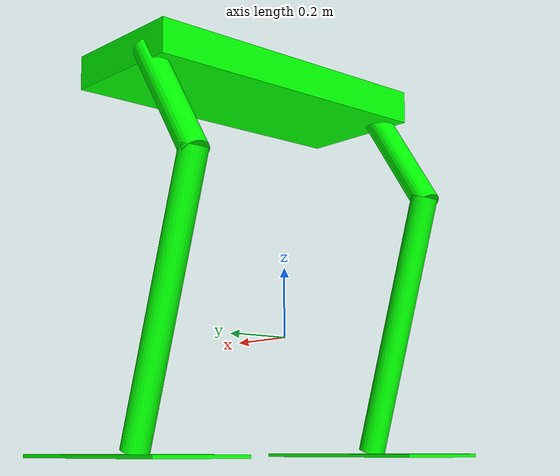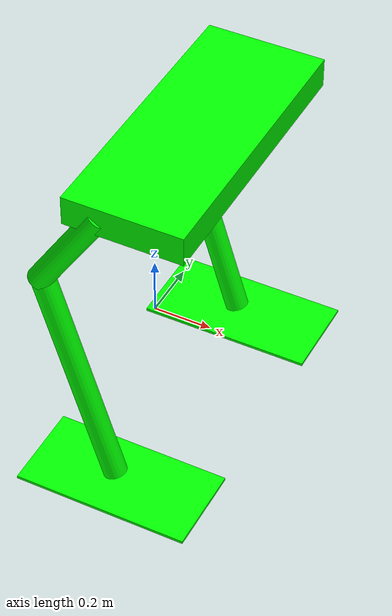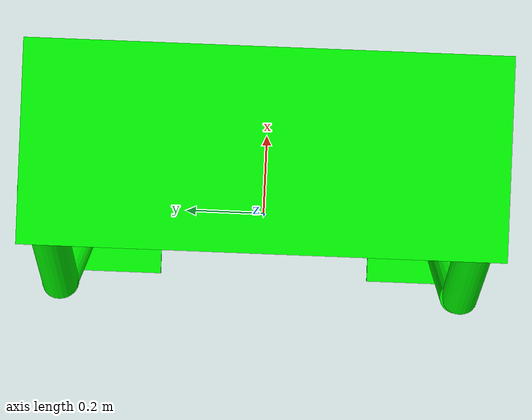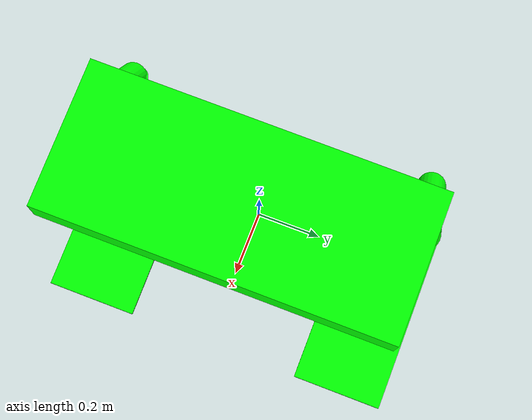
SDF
<?xml version='1.0'?>
<sdf version='1.6'>
  <model name='robot_green1'>
    <link name='link_1'>
      <inertial>
        <mass>1</mass>
        <inertia>
          <ixx>0.166667</ixx>
          <ixy>0</ixy>
          <ixz>0</ixz>
          <iyy>0.166667</iyy>
          <iyz>0</iyz>
          <izz>0.166667</izz>
        </inertia>
        <pose frame=''>0 0 0 0 -0 0</pose>
      </inertial>
      <pose frame=''>0.108816 -0.448387 -0.328119 0 -0 0</pose>
      <gravity>1</gravity>
      <self_collide>0</self_collide>
      <kinematic>0</kinematic>
      <enable_wind>0</enable_wind>
      <visual name='visual'>
        <pose frame=''>0 0 0 0 -0 0</pose>
        <geometry>
          <box>
            <size>0.6 0.3 0.01</size>
          </box>
        </geometry>
        <material>
          <lighting>1</lighting>
          <script>
            <uri>file://media/materials/scripts/gazebo.material</uri>
            <name>Gazebo/Grey</name>
          </script>
          <shader type='vertex'>
            <normal_map>__default__</normal_map>
          </shader>
          <ambient>0 1 0 1</ambient>
          <diffuse>0.7 0.7 0.7 1</diffuse>
          <specular>0.01 0.01 0.01 1</specular>
          <emissive>0 0 0 1</emissive>
        </material>
        <transparency>0</transparency>
        <cast_shadows>1</cast_shadows>
      </visual>
      <collision name='collision'>
        <laser_retro>0</laser_retro>
        <max_contacts>10</max_contacts>
        <pose frame=''>0 0 0 0 -0 0</pose>
        <geometry>
          <box>
            <size>0.6 0.3 0.01</size>
          </box>
        </geometry>
        <surface>
          <friction>
            <ode>
              <mu>1</mu>
              <mu2>1</mu2>
              <fdir1>0 0 0</fdir1>
              <slip1>0</slip1>
              <slip2>0</slip2>
            </ode>
            <torsional>
              <coefficient>1</coefficient>
              <patch_radius>0</patch_radius>
              <surface_radius>0</surface_radius>
              <use_patch_radius>1</use_patch_radius>
              <ode>
                <slip>0</slip>
              </ode>
            </torsional>
          </friction>
          <bounce>
            <restitution_coefficient>0</restitution_coefficient>
            <threshold>1e+06</threshold>
          </bounce>
          <contact>
            <collide_without_contact>0</collide_without_contact>
            <collide_without_contact_bitmask>1</collide_without_contact_bitmask>
            <collide_bitmask>1</collide_bitmask>
            <ode>
              <soft_cfm>0</soft_cfm>
              <soft_erp>0.2</soft_erp>
              <kp>1e+13</kp>
              <kd>1</kd>
              <max_vel>0.01</max_vel>
              <min_depth>0</min_depth>
            </ode>
            <bullet>
              <split_impulse>1</split_impulse>
              <split_impulse_penetration_threshold>-0.01</split_impulse_penetration_threshold>
              <soft_cfm>0</soft_cfm>
              <soft_erp>0.2</soft_erp>
              <kp>1e+13</kp>
              <kd>1</kd>
            </bullet>
          </contact>
        </surface>
      </collision>
    </link>
    <link name='link_1_clone'>
      <inertial>
        <mass>1</mass>
        <inertia>
          <ixx>0.166667</ixx>
          <ixy>0</ixy>
          <ixz>0</ixz>
          <iyy>0.166667</iyy>
          <iyz>0</iyz>
          <izz>0.166667</izz>
        </inertia>
        <pose frame=''>0 0 0 0 -0 0</pose>
      </inertial>
      <pose frame=''>0.108816 0.43723 -0.328119 0 -0 0</pose>
      <gravity>1</gravity>
      <self_collide>0</self_collide>
      <kinematic>0</kinematic>
      <enable_wind>0</enable_wind>
      <visual name='visual'>
        <pose frame=''>0 0 0 0 -0 0</pose>
        <geometry>
          <box>
            <size>0.6 0.3 0.01</size>
          </box>
        </geometry>
        <material>
          <lighting>1</lighting>
          <script>
            <uri>file://media/materials/scripts/gazebo.material</uri>
            <name>Gazebo/Grey</name>
          </script>
          <shader type='vertex'>
            <normal_map>__default__</normal_map>
          </shader>
          <ambient>0 1 0 1</ambient>
          <diffuse>0.7 0.7 0.7 1</diffuse>
          <specular>0.01 0.01 0.01 1</specular>
          <emissive>0 0 0 1</emissive>
        </material>
        <transparency>0</transparency>
        <cast_shadows>1</cast_shadows>
      </visual>
      <collision name='collision'>
        <laser_retro>0</laser_retro>
        <max_contacts>10</max_contacts>
        <pose frame=''>0 0 0 0 -0 0</pose>
        <geometry>
          <box>
            <size>0.6 0.3 0.01</size>
          </box>
        </geometry>
        <surface>
          <friction>
            <ode>
              <mu>1</mu>
              <mu2>1</mu2>
              <fdir1>0 0 0</fdir1>
              <slip1>0</slip1>
              <slip2>0</slip2>
            </ode>
            <torsional>
              <coefficient>1</coefficient>
              <patch_radius>0</patch_radius>
              <surface_radius>0</surface_radius>
              <use_patch_radius>1</use_patch_radius>
              <ode>
                <slip>0</slip>
              </ode>
            </torsional>
          </friction>
          <bounce>
            <restitution_coefficient>0</restitution_coefficient>
            <threshold>1e+06</threshold>
          </bounce>
          <contact>
            <collide_without_contact>0</collide_without_contact>
            <collide_without_contact_bitmask>1</collide_without_contact_bitmask>
            <collide_bitmask>1</collide_bitmask>
            <ode>
              <soft_cfm>0</soft_cfm>
              <soft_erp>0.2</soft_erp>
              <kp>1e+13</kp>
              <kd>1</kd>
              <max_vel>0.01</max_vel>
              <min_depth>0</min_depth>
            </ode>
            <bullet>
              <split_impulse>1</split_impulse>
              <split_impulse_penetration_threshold>-0.01</split_impulse_penetration_threshold>
              <soft_cfm>0</soft_cfm>
              <soft_erp>0.2</soft_erp>
              <kp>1e+13</kp>
              <kd>1</kd>
            </bullet>
          </contact>
        </surface>
      </collision>
    </link>
    <link name='link_2'>
      <inertial>
        <mass>1</mass>
        <inertia>
          <ixx>0.145833</ixx>
          <ixy>0</ixy>
          <ixz>0</ixz>
          <iyy>0.145833</iyy>
          <iyz>0</iyz>
          <izz>0.125</izz>
        </inertia>
        <pose frame=''>0 0 0 0 -0 0</pose>
      </inertial>
      <pose frame=''>0.083446 -0.438387 -0.316611 0 -0.3 0</pose>
      <gravity>1</gravity>
      <self_collide>0</self_collide>
      <kinematic>0</kinematic>
      <enable_wind>0</enable_wind>
      <visual name='visual'>
        <pose frame=''>0 0 0.4 0 -0 0</pose>
        <geometry>
          <cylinder>
            <radius>0.04</radius>
            <length>0.8</length>
          </cylinder>
        </geometry>
        <material>
          <lighting>1</lighting>
          <script>
            <uri>file://media/materials/scripts/gazebo.material</uri>
            <name>Gazebo/Grey</name>
          </script>
          <shader type='vertex'>
            <normal_map>__default__</normal_map>
          </shader>
          <ambient>0 1 0 1</ambient>
          <diffuse>0.7 0.7 0.7 1</diffuse>
          <specular>0.01 0.01 0.01 1</specular>
          <emissive>0 0 0 1</emissive>
        </material>
        <transparency>0</transparency>
        <cast_shadows>1</cast_shadows>
      </visual>
      <collision name='collision'>
        <laser_retro>0</laser_retro>
        <max_contacts>10</max_contacts>
        <pose frame=''>0 0 0.4 0 -0 0</pose>
        <geometry>
          <cylinder>
            <radius>0.04</radius>
            <length>0.8</length>
          </cylinder>
        </geometry>
        <surface>
          <friction>
            <ode>
              <mu>1</mu>
              <mu2>1</mu2>
              <fdir1>0 0 0</fdir1>
              <slip1>0</slip1>
              <slip2>0</slip2>
            </ode>
            <torsional>
              <coefficient>1</coefficient>
              <patch_radius>0</patch_radius>
              <surface_radius>0</surface_radius>
              <use_patch_radius>1</use_patch_radius>
              <ode>
                <slip>0</slip>
              </ode>
            </torsional>
          </friction>
          <bounce>
            <restitution_coefficient>0</restitution_coefficient>
            <threshold>1e+06</threshold>
          </bounce>
          <contact>
            <collide_without_contact>0</collide_without_contact>
            <collide_without_contact_bitmask>1</collide_without_contact_bitmask>
            <collide_bitmask>1</collide_bitmask>
            <ode>
              <soft_cfm>0</soft_cfm>
              <soft_erp>0.2</soft_erp>
              <kp>1e+13</kp>
              <kd>1</kd>
              <max_vel>0.01</max_vel>
              <min_depth>0</min_depth>
            </ode>
            <bullet>
              <split_impulse>1</split_impulse>
              <split_impulse_penetration_threshold>-0.01</split_impulse_penetration_threshold>
              <soft_cfm>0</soft_cfm>
              <soft_erp>0.2</soft_erp>
              <kp>1e+13</kp>
              <kd>1</kd>
            </bullet>
          </contact>
        </surface>
      </collision>
    </link>
    <link name='link_2_clone'>
      <inertial>
        <mass>1</mass>
        <inertia>
          <ixx>0.145833</ixx>
          <ixy>0</ixy>
          <ixz>0</ixz>
          <iyy>0.145833</iyy>
          <iyz>0</iyz>
          <izz>0.125</izz>
        </inertia>
        <pose frame=''>0 0 0 0 -0 0</pose>
      </inertial>
      <pose frame=''>-0.26733 -0.444034 0.261881 0 0.58 0</pose>
      <gravity>1</gravity>
      <self_collide>0</self_collide>
      <kinematic>0</kinematic>
      <enable_wind>0</enable_wind>
      <visual name='visual'>
        <pose frame=''>0 0 0.4 0 -0 0</pose>
        <geometry>
          <cylinder>
            <radius>0.04</radius>
            <length>0.4</length>
          </cylinder>
        </geometry>
        <material>
          <lighting>1</lighting>
          <script>
            <uri>file://media/materials/scripts/gazebo.material</uri>
            <name>Gazebo/Grey</name>
          </script>
          <shader type='vertex'>
            <normal_map>__default__</normal_map>
          </shader>
          <ambient>0 1 0 1</ambient>
          <diffuse>0.7 0.7 0.7 1</diffuse>
          <specular>0.01 0.01 0.01 1</specular>
          <emissive>0 0 0 1</emissive>
        </material>
        <transparency>0</transparency>
        <cast_shadows>1</cast_shadows>
      </visual>
      <collision name='collision'>
        <laser_retro>0</laser_retro>
        <max_contacts>10</max_contacts>
        <pose frame=''>0 0 0.4 0 -0 0</pose>
        <geometry>
          <cylinder>
            <radius>0.04</radius>
            <length>0.4</length>
          </cylinder>
        </geometry>
        <surface>
          <friction>
            <ode>
              <mu>1</mu>
              <mu2>1</mu2>
              <fdir1>0 0 0</fdir1>
              <slip1>0</slip1>
              <slip2>0</slip2>
            </ode>
            <torsional>
              <coefficient>1</coefficient>
              <patch_radius>0</patch_radius>
              <surface_radius>0</surface_radius>
              <use_patch_radius>1</use_patch_radius>
              <ode>
                <slip>0</slip>
              </ode>
            </torsional>
          </friction>
          <bounce>
            <restitution_coefficient>0</restitution_coefficient>
            <threshold>1e+06</threshold>
          </bounce>
          <contact>
            <collide_without_contact>0</collide_without_contact>
            <collide_without_contact_bitmask>1</collide_without_contact_bitmask>
            <collide_bitmask>1</collide_bitmask>
            <ode>
              <soft_cfm>0</soft_cfm>
              <soft_erp>0.2</soft_erp>
              <kp>1e+13</kp>
              <kd>1</kd>
              <max_vel>0.01</max_vel>
              <min_depth>0</min_depth>
            </ode>
            <bullet>
              <split_impulse>1</split_impulse>
              <split_impulse_penetration_threshold>-0.01</split_impulse_penetration_threshold>
              <soft_cfm>0</soft_cfm>
              <soft_erp>0.2</soft_erp>
              <kp>1e+13</kp>
              <kd>1</kd>
            </bullet>
          </contact>
        </surface>
      </collision>
    </link>
    <link name='link_2_clone_0'>
      <inertial>
        <mass>1</mass>
        <inertia>
          <ixx>0.145833</ixx>
          <ixy>0</ixy>
          <ixz>0</ixz>
          <iyy>0.145833</iyy>
          <iyz>0</iyz>
          <izz>0.125</izz>
        </inertia>
        <pose frame=''>0 0 0 0 -0 0</pose>
      </inertial>
      <pose frame=''>0.083446 0.446613 -0.316611 0 -0.3 0</pose>
      <gravity>1</gravity>
      <self_collide>0</self_collide>
      <kinematic>0</kinematic>
      <enable_wind>0</enable_wind>
      <visual name='visual'>
        <pose frame=''>0 0 0.4 0 -0 0</pose>
        <geometry>
          <cylinder>
            <radius>0.04</radius>
            <length>0.8</length>
          </cylinder>
        </geometry>
        <material>
          <lighting>1</lighting>
          <script>
            <uri>file://media/materials/scripts/gazebo.material</uri>
            <name>Gazebo/Grey</name>
          </script>
          <shader type='vertex'>
            <normal_map>__default__</normal_map>
          </shader>
          <ambient>0 1 0 1</ambient>
          <diffuse>0.7 0.7 0.7 1</diffuse>
          <specular>0.01 0.01 0.01 1</specular>
          <emissive>0 0 0 1</emissive>
        </material>
        <transparency>0</transparency>
        <cast_shadows>1</cast_shadows>
      </visual>
      <collision name='collision'>
        <laser_retro>0</laser_retro>
        <max_contacts>10</max_contacts>
        <pose frame=''>0 0 0.4 0 -0 0</pose>
        <geometry>
          <cylinder>
            <radius>0.04</radius>
            <length>0.8</length>
          </cylinder>
        </geometry>
        <surface>
          <friction>
            <ode>
              <mu>1</mu>
              <mu2>1</mu2>
              <fdir1>0 0 0</fdir1>
              <slip1>0</slip1>
              <slip2>0</slip2>
            </ode>
            <torsional>
              <coefficient>1</coefficient>
              <patch_radius>0</patch_radius>
              <surface_radius>0</surface_radius>
              <use_patch_radius>1</use_patch_radius>
              <ode>
                <slip>0</slip>
              </ode>
            </torsional>
          </friction>
          <bounce>
            <restitution_coefficient>0</restitution_coefficient>
            <threshold>1e+06</threshold>
          </bounce>
          <contact>
            <collide_without_contact>0</collide_without_contact>
            <collide_without_contact_bitmask>1</collide_without_contact_bitmask>
            <collide_bitmask>1</collide_bitmask>
            <ode>
              <soft_cfm>0</soft_cfm>
              <soft_erp>0.2</soft_erp>
              <kp>1e+13</kp>
              <kd>1</kd>
              <max_vel>0.01</max_vel>
              <min_depth>0</min_depth>
            </ode>
            <bullet>
              <split_impulse>1</split_impulse>
              <split_impulse_penetration_threshold>-0.01</split_impulse_penetration_threshold>
              <soft_cfm>0</soft_cfm>
              <soft_erp>0.2</soft_erp>
              <kp>1e+13</kp>
              <kd>1</kd>
            </bullet>
          </contact>
        </surface>
      </collision>
    </link>
    <link name='link_2_clone_clone'>
      <inertial>
        <mass>1</mass>
        <inertia>
          <ixx>0.145833</ixx>
          <ixy>0</ixy>
          <ixz>0</ixz>
          <iyy>0.145833</iyy>
          <iyz>0</iyz>
          <izz>0.125</izz>
        </inertia>
        <pose frame=''>0 0 0 0 -0 0</pose>
      </inertial>
      <pose frame=''>-0.26733 0.446613 0.261881 0 0.58 0</pose>
      <gravity>1</gravity>
      <self_collide>0</self_collide>
      <kinematic>0</kinematic>
      <enable_wind>0</enable_wind>
      <visual name='visual'>
        <pose frame=''>0 0 0.4 0 -0 0</pose>
        <geometry>
          <cylinder>
            <radius>0.04</radius>
            <length>0.4</length>
          </cylinder>
        </geometry>
        <material>
          <lighting>1</lighting>
          <script>
            <uri>file://media/materials/scripts/gazebo.material</uri>
            <name>Gazebo/Grey</name>
          </script>
          <shader type='vertex'>
            <normal_map>__default__</normal_map>
          </shader>
          <ambient>0 1 0 1</ambient>
          <diffuse>0.7 0.7 0.7 1</diffuse>
          <specular>0.01 0.01 0.01 1</specular>
          <emissive>0 0 0 1</emissive>
        </material>
        <transparency>0</transparency>
        <cast_shadows>1</cast_shadows>
      </visual>
      <collision name='collision'>
        <laser_retro>0</laser_retro>
        <max_contacts>10</max_contacts>
        <pose frame=''>0 0 0.4 0 -0 0</pose>
        <geometry>
          <cylinder>
            <radius>0.04</radius>
            <length>0.4</length>
          </cylinder>
        </geometry>
        <surface>
          <friction>
            <ode>
              <mu>1</mu>
              <mu2>1</mu2>
              <fdir1>0 0 0</fdir1>
              <slip1>0</slip1>
              <slip2>0</slip2>
            </ode>
            <torsional>
              <coefficient>1</coefficient>
              <patch_radius>0</patch_radius>
              <surface_radius>0</surface_radius>
              <use_patch_radius>1</use_patch_radius>
              <ode>
                <slip>0</slip>
              </ode>
            </torsional>
          </friction>
          <bounce>
            <restitution_coefficient>0</restitution_coefficient>
            <threshold>1e+06</threshold>
          </bounce>
          <contact>
            <collide_without_contact>0</collide_without_contact>
            <collide_without_contact_bitmask>1</collide_without_contact_bitmask>
            <collide_bitmask>1</collide_bitmask>
            <ode>
              <soft_cfm>0</soft_cfm>
              <soft_erp>0.2</soft_erp>
              <kp>1e+13</kp>
              <kd>1</kd>
              <max_vel>0.01</max_vel>
              <min_depth>0</min_depth>
            </ode>
            <bullet>
              <split_impulse>1</split_impulse>
              <split_impulse_penetration_threshold>-0.01</split_impulse_penetration_threshold>
              <soft_cfm>0</soft_cfm>
              <soft_erp>0.2</soft_erp>
              <kp>1e+13</kp>
              <kd>1</kd>
            </bullet>
          </contact>
        </surface>
      </collision>
    </link>
    <link name='link_3'>
      <inertial>
        <mass>1</mass>
        <inertia>
          <ixx>0.166667</ixx>
          <ixy>0</ixy>
          <ixz>0</ixz>
          <iyy>0.166667</iyy>
          <iyz>0</iyz>
          <izz>0.166667</izz>
        </inertia>
        <pose frame=''>0 0 0 0 -0 0</pose>
      </inertial>
      <pose frame=''>0.150138 0.000351 0.765701 0 -0 0</pose>
      <gravity>1</gravity>
      <self_collide>0</self_collide>
      <kinematic>0</kinematic>
      <enable_wind>0</enable_wind>
      <visual name='visual'>
        <pose frame=''>0 0 0 0 -0 0</pose>
        <geometry>
          <box>
            <size>0.4 0.95 0.1</size>
          </box>
        </geometry>
        <material>
          <lighting>1</lighting>
          <script>
            <uri>file://media/materials/scripts/gazebo.material</uri>
            <name>Gazebo/Grey</name>
          </script>
          <shader type='vertex'>
            <normal_map>__default__</normal_map>
          </shader>
          <ambient>0 1 0 1</ambient>
          <diffuse>0.7 0.7 0.7 1</diffuse>
          <specular>0.01 0.01 0.01 1</specular>
          <emissive>0 0 0 1</emissive>
        </material>
        <transparency>0</transparency>
        <cast_shadows>1</cast_shadows>
      </visual>
      <collision name='collision'>
        <laser_retro>0</laser_retro>
        <max_contacts>10</max_contacts>
        <pose frame=''>0 0 0 0 -0 0</pose>
        <geometry>
          <box>
            <size>0.4 0.95 0.1</size>
          </box>
        </geometry>
        <surface>
          <friction>
            <ode>
              <mu>1</mu>
              <mu2>1</mu2>
              <fdir1>0 0 0</fdir1>
              <slip1>0</slip1>
              <slip2>0</slip2>
            </ode>
            <torsional>
              <coefficient>1</coefficient>
              <patch_radius>0</patch_radius>
              <surface_radius>0</surface_radius>
              <use_patch_radius>1</use_patch_radius>
              <ode>
                <slip>0</slip>
              </ode>
            </torsional>
          </friction>
          <bounce>
            <restitution_coefficient>0</restitution_coefficient>
            <threshold>1e+06</threshold>
          </bounce>
          <contact>
            <collide_without_contact>0</collide_without_contact>
            <collide_without_contact_bitmask>1</collide_without_contact_bitmask>
            <collide_bitmask>1</collide_bitmask>
            <ode>
              <soft_cfm>0</soft_cfm>
              <soft_erp>0.2</soft_erp>
              <kp>1e+13</kp>
              <kd>1</kd>
              <max_vel>0.01</max_vel>
              <min_depth>0</min_depth>
            </ode>
            <bullet>
              <split_impulse>1</split_impulse>
              <split_impulse_penetration_threshold>-0.01</split_impulse_penetration_threshold>
              <soft_cfm>0</soft_cfm>
              <soft_erp>0.2</soft_erp>
              <kp>1e+13</kp>
              <kd>1</kd>
            </bullet>
          </contact>
        </surface>
      </collision>
    </link>
    <joint name='link_1_JOINT_0' type='revolute'>
      <parent>link_1</parent>
      <child>link_2</child>
      <pose frame=''>0 0 0 0 -0 0</pose>
      <axis>
        <xyz>0 0 1</xyz>
        <use_parent_model_frame>0</use_parent_model_frame>
        <limit>
          <lower>-1.79769e+308</lower>
          <upper>1.79769e+308</upper>
          <effort>-1</effort>
          <velocity>-1</velocity>
        </limit>
        <dynamics>
          <spring_reference>0</spring_reference>
          <spring_stiffness>0</spring_stiffness>
          <damping>0</damping>
        </dynamics>
      </axis>
      <physics>
        <ode>
          <limit>
            <cfm>0</cfm>
            <erp>0.2</erp>
          </limit>
          <suspension>
            <cfm>0</cfm>
            <erp>0.2</erp>
          </suspension>
        </ode>
      </physics>
    </joint>
    <joint name='link_1_clone_JOINT_2' type='revolute'>
      <parent>link_1_clone</parent>
      <child>link_2_clone_0</child>
      <pose frame=''>0 0 0 0 -0 0</pose>
      <axis>
        <xyz>0 0 1</xyz>
        <use_parent_model_frame>0</use_parent_model_frame>
        <limit>
          <lower>-1.79769e+308</lower>
          <upper>1.79769e+308</upper>
          <effort>-1</effort>
          <velocity>-1</velocity>
        </limit>
        <dynamics>
          <spring_reference>0</spring_reference>
          <spring_stiffness>0</spring_stiffness>
          <damping>0</damping>
        </dynamics>
      </axis>
      <physics>
        <ode>
          <limit>
            <cfm>0</cfm>
            <erp>0.2</erp>
          </limit>
          <suspension>
            <cfm>0</cfm>
            <erp>0.2</erp>
          </suspension>
        </ode>
      </physics>
    </joint>
    <joint name='link_2_JOINT_1' type='revolute'>
      <parent>link_2</parent>
      <child>link_2_clone</child>
      <pose frame=''>0 0 0 0 -0 0</pose>
      <axis>
        <xyz>0 0 1</xyz>
        <use_parent_model_frame>0</use_parent_model_frame>
        <limit>
          <lower>-1.79769e+308</lower>
          <upper>1.79769e+308</upper>
          <effort>-1</effort>
          <velocity>-1</velocity>
        </limit>
        <dynamics>
          <spring_reference>0</spring_reference>
          <spring_stiffness>0</spring_stiffness>
          <damping>0</damping>
        </dynamics>
      </axis>
      <physics>
        <ode>
          <limit>
            <cfm>0</cfm>
            <erp>0.2</erp>
          </limit>
          <suspension>
            <cfm>0</cfm>
            <erp>0.2</erp>
          </suspension>
        </ode>
      </physics>
    </joint>
    <joint name='link_2_clone_0_JOINT_3' type='revolute'>
      <parent>link_2_clone_0</parent>
      <child>link_2_clone_clone</child>
      <pose frame=''>0 0 0 0 -0 0</pose>
      <axis>
        <xyz>0 0 1</xyz>
        <use_parent_model_frame>0</use_parent_model_frame>
        <limit>
          <lower>-1.79769e+308</lower>
          <upper>1.79769e+308</upper>
          <effort>-1</effort>
          <velocity>-1</velocity>
        </limit>
        <dynamics>
          <spring_reference>0</spring_reference>
          <spring_stiffness>0</spring_stiffness>
          <damping>0</damping>
        </dynamics>
      </axis>
      <physics>
        <ode>
          <limit>
            <cfm>0</cfm>
            <erp>0.2</erp>
          </limit>
          <suspension>
            <cfm>0</cfm>
            <erp>0.2</erp>
          </suspension>
        </ode>
      </physics>
    </joint>
    <joint name='link_3_JOINT_4' type='revolute'>
      <parent>link_3</parent>
      <child>link_2_clone</child>
      <pose frame=''>0 0 0 0 -0 0</pose>
      <axis>
        <xyz>0 0 1</xyz>
        <use_parent_model_frame>0</use_parent_model_frame>
        <limit>
          <lower>-1.79769e+308</lower>
          <upper>1.79769e+308</upper>
          <effort>-1</effort>
          <velocity>-1</velocity>
        </limit>
        <dynamics>
          <spring_reference>0</spring_reference>
          <spring_stiffness>0</spring_stiffness>
          <damping>0</damping>
        </dynamics>
      </axis>
      <physics>
        <ode>
          <limit>
            <cfm>0</cfm>
            <erp>0.2</erp>
          </limit>
          <suspension>
            <cfm>0</cfm>
            <erp>0.2</erp>
          </suspension>
        </ode>
      </physics>
    </joint>
    <joint name='link_3_JOINT_7' type='revolute'>
      <parent>link_3</parent>
      <child>link_2_clone_clone</child>
      <pose frame=''>0 0 0 0 -0 0</pose>
      <axis>
        <xyz>0 0 1</xyz>
        <use_parent_model_frame>0</use_parent_model_frame>
        <limit>
          <lower>-1.79769e+308</lower>
          <upper>1.79769e+308</upper>
          <effort>-1</effort>
          <velocity>-1</velocity>
        </limit>
        <dynamics>
          <spring_reference>0</spring_reference>
          <spring_stiffness>0</spring_stiffness>
          <damping>0</damping>
        </dynamics>
      </axis>
      <physics>
        <ode>
          <limit>
            <cfm>0</cfm>
            <erp>0.2</erp>
          </limit>
          <suspension>
            <cfm>0</cfm>
            <erp>0.2</erp>
          </suspension>
        </ode>
      </physics>
    </joint>
    <static>0</static>
    <allow_auto_disable>1</allow_auto_disable>
  </model>
</sdf>
